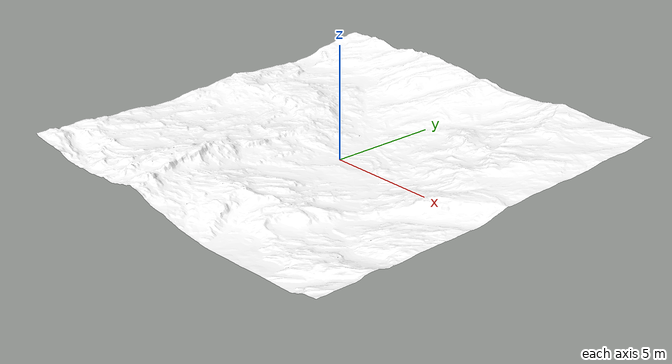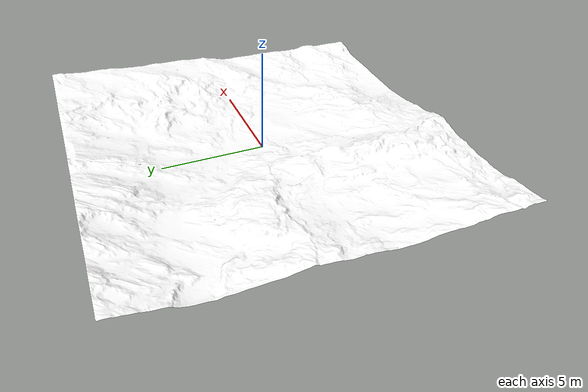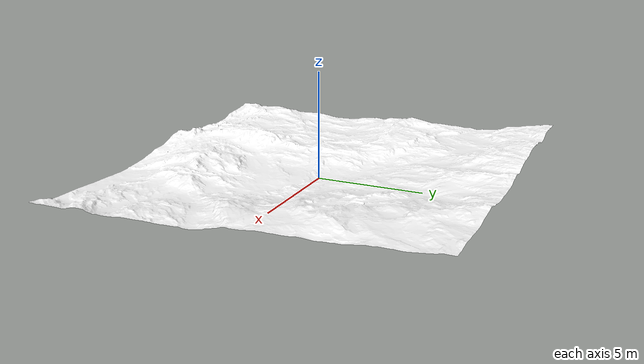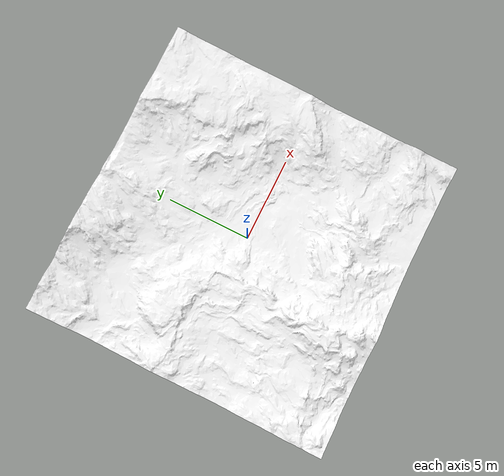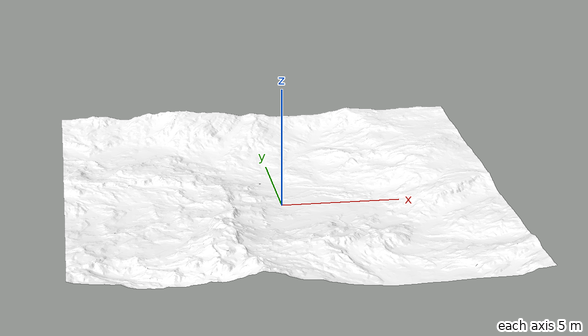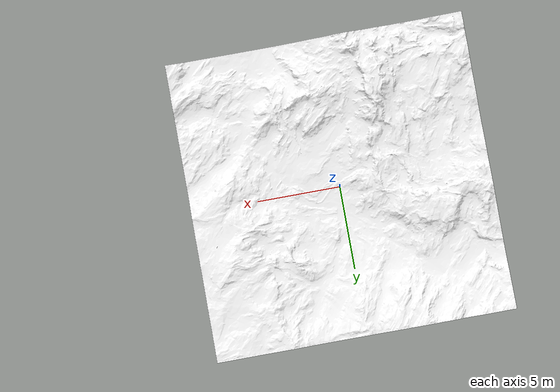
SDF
<?xml version="1.0"?>
<sdf version="1.9">
  <model name="rocky_terrain_n4">
    <static>true</static>
    <link name="terrain_link">
      <collision name="terrain_collision">
        <geometry><mesh><uri>model://rocky_terrain_n4/meshes/terrain_collision.stl</uri><scale>1.8 1.8 1.44</scale></mesh></geometry>
        <surface><friction><ode><mu>1.0</mu><mu2>1.0</mu2></ode></friction></surface>
      </collision>
      <visual name="terrain_visual">
        <geometry><mesh><uri>model://rocky_terrain_n4/meshes/terrain_visual.obj</uri><scale>1.8 1.8 1.44</scale></mesh></geometry>
        <material>
          <ambient>1 1 1 1</ambient><diffuse>1 1 1 1</diffuse><specular>0.02 0.02 0.02 1</specular>
          <pbr><metal>
            <albedo_map>model://rocky_terrain_n4/materials/textures/diffuse.png</albedo_map>
            <normal_map>model://rocky_terrain_n4/materials/textures/normal.png</normal_map>
            <metalness>0</metalness><roughness>0.9</roughness>
          </metal></pbr>
        </material>
      </visual>
    </link>
  </model>
</sdf>
